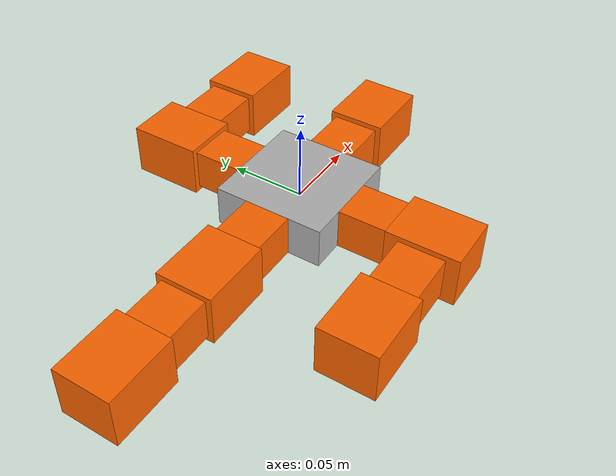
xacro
<?xml version="1.0" ?>
<robot xmlns:xacro="http://www.ros.org/wiki/xacro" name="modular_robot">
  <xacro:include filename="base.xacro"/>
  <xacro:include filename="module.xacro"/>
  <xacro:base name="base"/>
  <joint name="joint_base_module_0" type="fixed">
    <parent link="base_link"/>
    <child link="module_0_connector_link"/>
    <origin xyz="-0.0526 0 0" rpy="0 0 3.141592653589793"/>
  </joint>
  <xacro:module name="module_0"/>
  <joint name="joint_base_module_1" type="fixed">
    <parent link="base_link"/>
    <child link="module_1_connector_link"/>
    <origin xyz="0 0.0526 0" rpy="0 0 1.5707963267948966"/>
  </joint>
  <xacro:module name="module_1"/>
  <joint name="joint_base_module_2" type="fixed">
    <parent link="base_link"/>
    <child link="module_2_connector_link"/>
    <origin xyz="0.0526 0 0" rpy="0 0 0"/>
  </joint>
  <xacro:module name="module_2"/>
  <joint name="joint_base_module_3" type="fixed">
    <parent link="base_link"/>
    <child link="module_3_connector_link"/>
    <origin xyz="0 -0.0526 0" rpy="0 0 -1.5707963267948966"/>
  </joint>
  <xacro:module name="module_3"/>
  <joint name="joint_module_3_module_4" type="fixed">
    <parent link="module_3_motor_link"/>
    <child link="module_4_connector_link"/>
    <origin xyz="0 -0.038125 0" rpy="0 0 -1.5707963267948966"/>
  </joint>
  <xacro:module name="module_4"/>
  <joint name="joint_module_1_module_5" type="fixed">
    <parent link="module_1_motor_link"/>
    <child link="module_5_connector_link"/>
    <origin xyz="0 -0.038125 0" rpy="0 0 -1.5707963267948966"/>
  </joint>
  <xacro:module name="module_5"/>
  <joint name="joint_module_0_module_6" type="fixed">
    <parent link="module_0_motor_link"/>
    <child link="module_6_connector_link"/>
    <origin xyz="0.038125 0 0" rpy="0 0 0"/>
  </joint>
  <xacro:module name="module_6"/>
</robot>

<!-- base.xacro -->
<robot xmlns:xacro="http://www.ros.org/wiki/xacro">

  <xacro:macro name="base" params="name='base'">
    <xacro:property name="name" value="flat_base" />
    <xacro:property name="mass" value="0.65" />
    <xacro:property name="size_x" value="0.1494" />
    <xacro:property name="size_y" value="0.1494" />
    <xacro:property name="size_z" value="0.055023" />

    <xacro:property name="ixx" value="${(1.0/12.0) * mass * (size_y*size_y + size_z*size_z)}" />
    <xacro:property name="iyy" value="${(1.0/12.0) * mass * (size_x*size_x + size_z*size_z)}" />
    <xacro:property name="izz" value="${(1.0/12.0) * mass * (size_x*size_x + size_y*size_y)}" />

    <link name="base_link">
      <inertial>
        <origin xyz="0 0 0" rpy="0 0 0" />
        <mass value="0.65" />
        <inertia ixx="0.000342" ixy="0" ixz="0" iyy="0.000342" iyz="0" izz="0.000604" />
      </inertial>

      <visual>
        <origin xyz="0 0 0" rpy="0 0 0" />
        <geometry>
          <box size="0.0747 0.0747 0.0275115" />
        </geometry>
        <material name="grey">
          <color rgba="0.7 0.7 0.7 1" />
        </material>
      </visual>

      <collision>
        <origin xyz="0 0 0" rpy="0 0 0" />
        <geometry>
          <box size="0.0747 0.0747 0.0275115" />
        </geometry>
      </collision>
    </link>
  </xacro:macro>

</robot>

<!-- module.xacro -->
<robot xmlns:xacro="http://www.ros.org/wiki/xacro">

  <xacro:macro name="module" params="name xyz:='0 0 0' rpy:='0 0 0'">
    <link name="${name}_connector_link">
      <inertial>
        <origin xyz="0 0 0" />
        <mass value="0.06" />
        <inertia ixx="8.43e-06" ixy="0" ixz="0" iyy="1.12e-05" iyz="0" izz="1.21e-05" />
      </inertial>

      <visual>
        <origin xyz="0 0 0" rpy="0 0 0" />
        <geometry>
          <box size="0.0385 0.0305 0.0275" />
        </geometry>
        <material name="orange">
          <color rgba="1 0.4 0 1" />
        </material>
      </visual>

      <collision>
        <origin xyz="0 0 0" />
        <geometry>
          <box size="0.0385 0.0305 0.0275" />
        </geometry>
      </collision>
    </link>

    <link name="${name}_motor_link">
      <inertial>
        <origin xyz="0 0 0" />
        <mass value="0.06" />
        <inertia ixx="1.32e-05" ixy="0" ixz="0" iyy="1.75e-05" iyz="0" izz="1.89e-05" />
      </inertial>

      <visual>
        <origin xyz="0 0 0" />
        <geometry>
          <box size="0.048125 0.038125 0.034375" />
        </geometry>
        <material name="orange">
          <color rgba="1 0.4 0 1" />
        </material>
      </visual>

      <collision>
        <origin xyz="0 0 0" />
        <geometry>
          <box size="0.048125 0.038125 0.034375" />
        </geometry>
      </collision>
    </link>

    <joint name="${name}_joint" type="revolute">
      <parent link="${name}_connector_link" />
      <child link="${name}_motor_link" />
      <!-- Offset increased to remove collision overlap -->
      <origin xyz="0.042 0 0" rpy="0 0 0" />
      <axis xyz="0 1 0" />
      <limit effort="0.5" lower="-0.6" upper="0.6" velocity="2.0" />
      <dynamics damping="0.03" />
    </joint>
  </xacro:macro>
</robot>
